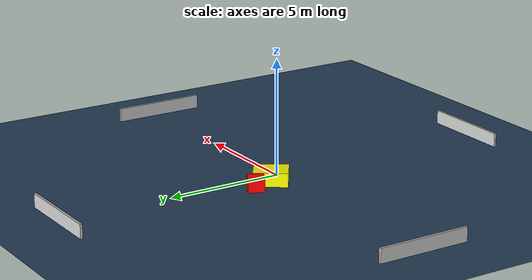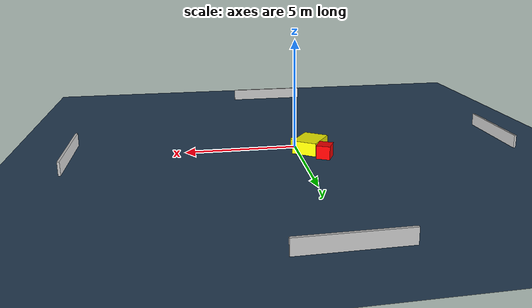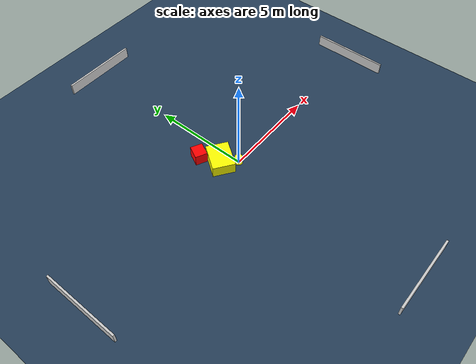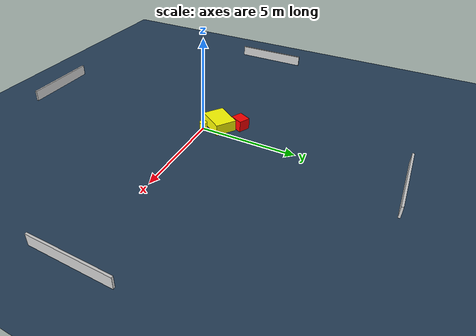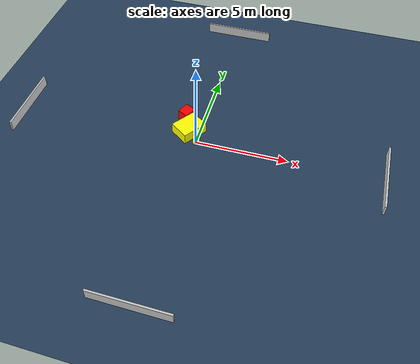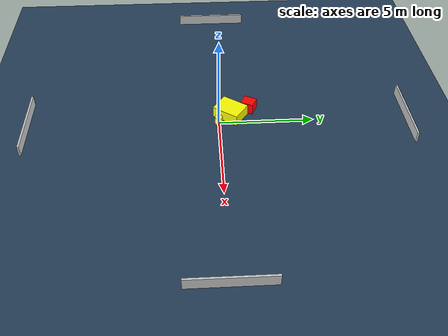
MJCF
<?xml version="1.0" ?>
<mujoco model="generated_environment">
  <option timestep="0.01" integrator="RK4" cone="elliptic"/>
  <default>
    <geom density="1"/>
  </default>
  <asset>
    <texture builtin="gradient" height="3072" name="skybox" rgb1="0.3 0.5 0.7" rgb2="0 0 0" type="skybox" width="512"/>
    <texture builtin="checker" height="300" name="groundplane" rgb1="0.2 0.3 0.4" rgb2="0.1 0.2 0.3" type="2d" width="300"/>
    <material name="groundplane" reflectance="0.2" texrepeat="5 5" texture="groundplane"/>
  </asset>
  <worldbody>
    <light dir="0 0 -1" directional="true" pos="0 0 1.5"/>
    <geom condim="3" friction="0.5 0.005 0.001" material="groundplane" name="floor" pos="0 0 0" size="0 0 0.05" type="plane"/>
    <body name="walls">
      <geom name="wall_1" condim="4" pos="-10.0 0.0 0.3" rgba="0.800000011920929 0.800000011920929 0.800000011920929 1.0" size="0.05 2.0 0.3" type="box"/>
      <geom name="wall_2" condim="4" pos="10.0 0.0 0.3" rgba="0.800000011920929 0.800000011920929 0.800000011920929 1.0" size="0.05 2.0 0.3" type="box"/>
      <geom name="wall_3" condim="4" pos="0.0 -10.0 0.3" rgba="0.800000011920929 0.800000011920929 0.800000011920929 1.0" size="2.0 0.05 0.3" type="box"/>
      <geom name="wall_4" condim="4" pos="0.0 10.0 0.3" rgba="0.800000011920929 0.800000011920929 0.800000011920929 1.0" size="2.0 0.05 0.3" type="box"/>
    </body>
    <body name="robot">
      <joint name="joint_x" type="slide" pos="0 0 0" axis="1 0 0"/>
      <joint name="joint_y" type="slide" pos="0 0 0" axis="0 1 0"/>
      <geom name="robot" type="cylinder" pos="0.0 0.0 0.2" size="0.2 0.2 0.0" mass="5.0" friction="1.0 0.005 0.0001" condim="4" rgba="1.0 1.0 0.0 1.0"/>
    </body>
    <body name="obstacle_1_movable">
      <geom name="obstacle_1_movable" condim="4" pos="-0.5965602485505058 0.6598821772438845 0.3" euler="0 0 144.81672894854236" friction="0.0 0.005 0.001" rgba="1.0 1.0 0.0 1.0" size="0.5690812847748122 0.7293982621292185 0.3" type="box" mass="0.1"/>
      <joint type="free"/>
    </body>
    <body name="obstacle_2_static">
      <geom name="obstacle_2_static" condim="4" pos="-1.0370620151743914 1.668683612668202 0.3" euler="0 0 63.48078740180444" friction="0.0 0.005 0.001" rgba="1.0 0.0 0.0 1.0" size="0.34831098581759035 0.30972883104514387 0.3" type="box"/>
    </body>
  </worldbody>
  <actuator>
    <motor name="actuator_x" joint="joint_x" gear="1" ctrlrange="-1 1"/>
    <motor name="actuator_y" joint="joint_y" gear="1" ctrlrange="-1 1"/>
  </actuator>
</mujoco>
